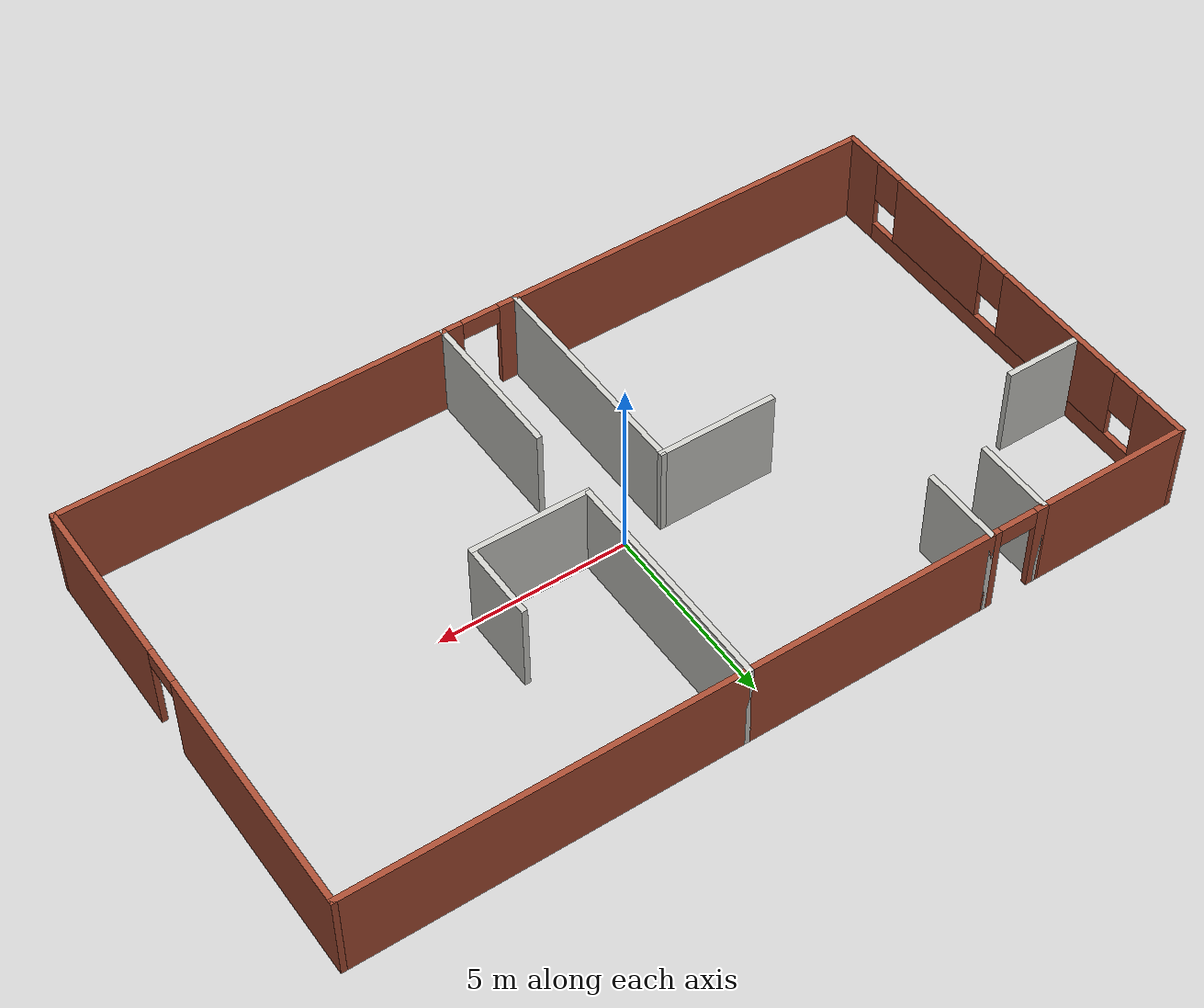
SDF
<?xml version='1.0'?>
<sdf version='1.6'>
  <model name='model'>
    <pose frame=''>0 0 0 0 -0 0</pose>
    <link name='Wall_10'>
      <collision name='Wall_10_Collision'>
        <geometry>
          <box>
            <size>2.15 0.15 2.5</size>
          </box>
        </geometry>
        <pose frame=''>0 0 1.25 0 -0 0</pose>
      </collision>
      <visual name='Wall_10_Visual'>
        <pose frame=''>0 0 1.25 0 -0 0</pose>
        <geometry>
          <box>
            <size>2.15 0.15 2.5</size>
          </box>
        </geometry>
        <material>
          <script>
            <uri>file://media/materials/scripts/gazebo.material</uri>
            <name>Gazebo/CeilingTiled</name>
          </script>
          <ambient>0.996078 0.47451 0.0196078 1</ambient>
        </material>
        <meta>
          <layer>0</layer>
        </meta>
      </visual>
      <pose frame=''>-7 5 0 0 0 -1.5708</pose>
    </link>
    <link name='Wall_12'>
      <collision name='Wall_12_Collision'>
        <geometry>
          <box>
            <size>2.15 0.15 2.5</size>
          </box>
        </geometry>
        <pose frame=''>0 0 1.25 0 -0 0</pose>
      </collision>
      <visual name='Wall_12_Visual'>
        <pose frame=''>0 0 1.25 0 -0 0</pose>
        <geometry>
          <box>
            <size>2.15 0.15 2.5</size>
          </box>
        </geometry>
        <material>
          <script>
            <uri>file://media/materials/scripts/gazebo.material</uri>
            <name>Gazebo/CeilingTiled</name>
          </script>
          <ambient>0.996078 0.47451 0.0196078 1</ambient>
        </material>
        <meta>
          <layer>0</layer>
        </meta>
      </visual>
      <pose frame=''>-10 2.5 0 0 -0 0</pose>
    </link>
    <link name='Wall_14'>
      <collision name='Wall_14_Collision'>
        <geometry>
          <box>
            <size>4.15 0.15 2.5</size>
          </box>
        </geometry>
        <pose frame=''>0 0 1.25 0 -0 0</pose>
      </collision>
      <visual name='Wall_14_Visual'>
        <pose frame=''>0 0 1.25 0 -0 0</pose>
        <geometry>
          <box>
            <size>4.15 0.15 2.5</size>
          </box>
        </geometry>
        <material>
          <script>
            <uri>file://media/materials/scripts/gazebo.material</uri>
            <name>Gazebo/Bricks</name>
          </script>
          <ambient>0.921569 0.807843 0.615686 1</ambient>
        </material>
        <meta>
          <layer>0</layer>
        </meta>
      </visual>
      <pose frame=''>-9 6 0 0 -0 0</pose>
    </link>
    <link name='Wall_16'>
      <collision name='Wall_16_Collision'>
        <geometry>
          <box>
            <size>16.65 0.15 2.5</size>
          </box>
        </geometry>
        <pose frame=''>0 0 1.25 0 -0 0</pose>
      </collision>
      <visual name='Wall_16_Visual'>
        <pose frame=''>0 0 1.25 0 -0 0</pose>
        <geometry>
          <box>
            <size>16.65 0.15 2.5</size>
          </box>
        </geometry>
        <material>
          <script>
            <uri>file://media/materials/scripts/gazebo.material</uri>
            <name>Gazebo/Bricks</name>
          </script>
          <ambient>0.921569 0.807843 0.615686 1</ambient>
        </material>
        <meta>
          <layer>0</layer>
        </meta>
      </visual>
      <pose frame=''>2.75 6 0 0 -0 0</pose>
    </link>
    <link name='Wall_18'>
      <collision name='Wall_18_Collision'>
        <geometry>
          <box>
            <size>2.15 0.15 2.5</size>
          </box>
        </geometry>
        <pose frame=''>0 0 1.25 0 -0 0</pose>
      </collision>
      <visual name='Wall_18_Visual'>
        <pose frame=''>0 0 1.25 0 -0 0</pose>
        <geometry>
          <box>
            <size>2.15 0.15 2.5</size>
          </box>
        </geometry>
        <material>
          <script>
            <uri>file://media/materials/scripts/gazebo.material</uri>
            <name>Gazebo/CeilingTiled</name>
          </script>
          <ambient>0.996078 0.47451 0.0196078 1</ambient>
        </material>
        <meta>
          <layer>0</layer>
        </meta>
      </visual>
      <pose frame=''>-5.5 5 0 0 0 -1.5708</pose>
    </link>
    <link name='Wall_20'>
      <pose frame=''>11 0 0 0 0 -1.5708</pose>
      <visual name='Wall_20_Visual_0'>
        <pose frame=''>-2.7875 0 1.25 0 -0 0</pose>
        <geometry>
          <box>
            <size>6.575 0.15 2.5</size>
          </box>
        </geometry>
        <material>
          <script>
            <uri>file://media/materials/scripts/gazebo.material</uri>
            <name>Gazebo/Bricks</name>
          </script>
          <ambient>0.921569 0.807843 0.615686 1</ambient>
        </material>
        <meta>
          <layer>0</layer>
        </meta>
      </visual>
      <collision name='Wall_20_Collision_0'>
        <geometry>
          <box>
            <size>6.575 0.15 2.5</size>
          </box>
        </geometry>
        <pose frame=''>-2.7875 0 1.25 0 -0 0</pose>
      </collision>
      <visual name='Wall_20_Visual_1'>
        <pose frame=''>3.7875 0 1.25 0 -0 0</pose>
        <geometry>
          <box>
            <size>4.575 0.15 2.5</size>
          </box>
        </geometry>
        <material>
          <script>
            <uri>file://media/materials/scripts/gazebo.material</uri>
            <name>Gazebo/Bricks</name>
          </script>
          <ambient>0.921569 0.807843 0.615686 1</ambient>
        </material>
        <meta>
          <layer>0</layer>
        </meta>
      </visual>
      <collision name='Wall_20_Collision_1'>
        <geometry>
          <box>
            <size>4.575 0.15 2.5</size>
          </box>
        </geometry>
        <pose frame=''>3.7875 0 1.25 0 -0 0</pose>
      </collision>
      <visual name='Wall_20_Visual_2'>
        <pose frame=''>1 0 2.25 0 -0 0</pose>
        <geometry>
          <box>
            <size>1 0.15 0.5</size>
          </box>
        </geometry>
        <material>
          <script>
            <uri>file://media/materials/scripts/gazebo.material</uri>
            <name>Gazebo/Bricks</name>
          </script>
          <ambient>0.921569 0.807843 0.615686 1</ambient>
        </material>
        <meta>
          <layer>0</layer>
        </meta>
      </visual>
      <collision name='Wall_20_Collision_2'>
        <geometry>
          <box>
            <size>1 0.15 0.5</size>
          </box>
        </geometry>
        <pose frame=''>1 0 2.25 0 -0 0</pose>
      </collision>
    </link>
    <link name='Wall_21'>
      <collision name='Wall_21_Collision'>
        <geometry>
          <box>
            <size>10.15 0.15 2.5</size>
          </box>
        </geometry>
        <pose frame=''>0 0 1.25 0 -0 0</pose>
      </collision>
      <visual name='Wall_21_Visual'>
        <pose frame=''>0 0 1.25 0 -0 0</pose>
        <geometry>
          <box>
            <size>10.15 0.15 2.5</size>
          </box>
        </geometry>
        <material>
          <script>
            <uri>file://media/materials/scripts/gazebo.material</uri>
            <name>Gazebo/Bricks</name>
          </script>
          <ambient>0.921569 0.807843 0.615686 1</ambient>
        </material>
        <meta>
          <layer>0</layer>
        </meta>
      </visual>
      <pose frame=''>6 -6 0 0 -0 3.14159</pose>
    </link>
    <link name='Wall_23'>
      <collision name='Wall_23_Collision'>
        <geometry>
          <box>
            <size>4.15 0.15 2.5</size>
          </box>
        </geometry>
        <pose frame=''>0 0 1.25 0 -0 0</pose>
      </collision>
      <visual name='Wall_23_Visual'>
        <pose frame=''>0 0 1.25 0 -0 0</pose>
        <geometry>
          <box>
            <size>4.15 0.15 2.5</size>
          </box>
        </geometry>
        <material>
          <script>
            <uri>file://media/materials/scripts/gazebo.material</uri>
            <name>Gazebo/CeilingTiled</name>
          </script>
          <ambient>0.996078 0.47451 0.0196078 1</ambient>
        </material>
        <meta>
          <layer>0</layer>
        </meta>
      </visual>
      <pose frame=''>1 -4 0 0 0 -1.5708</pose>
    </link>
    <link name='Wall_26'>
      <collision name='Wall_26_Collision'>
        <geometry>
          <box>
            <size>6.15 0.15 2.5</size>
          </box>
        </geometry>
        <pose frame=''>0 0 1.25 0 -0 0</pose>
      </collision>
      <visual name='Wall_26_Visual'>
        <pose frame=''>0 0 1.25 0 -0 0</pose>
        <geometry>
          <box>
            <size>6.15 0.15 2.5</size>
          </box>
        </geometry>
        <material>
          <script>
            <uri>file://media/materials/scripts/gazebo.material</uri>
            <name>Gazebo/CeilingTiled</name>
          </script>
          <ambient>0.996078 0.47451 0.0196078 1</ambient>
        </material>
        <meta>
          <layer>0</layer>
        </meta>
      </visual>
      <pose frame=''>1 3 0 0 -0 1.5708</pose>
    </link>
    <link name='Wall_28'>
      <collision name='Wall_28_Collision'>
        <geometry>
          <box>
            <size>3.15 0.15 2.5</size>
          </box>
        </geometry>
        <pose frame=''>0 0 1.25 0 -0 0</pose>
      </collision>
      <visual name='Wall_28_Visual'>
        <pose frame=''>0 0 1.25 0 -0 0</pose>
        <geometry>
          <box>
            <size>3.15 0.15 2.5</size>
          </box>
        </geometry>
        <material>
          <script>
            <uri>file://media/materials/scripts/gazebo.material</uri>
            <name>Gazebo/CeilingTiled</name>
          </script>
          <ambient>0.996078 0.47451 0.0196078 1</ambient>
        </material>
        <meta>
          <layer>0</layer>
        </meta>
      </visual>
      <pose frame=''>2.5 0 0 0 -0 0</pose>
    </link>
    <link name='Wall_29'>
      <collision name='Wall_29_Collision'>
        <geometry>
          <box>
            <size>2.15 0.15 2.5</size>
          </box>
        </geometry>
        <pose frame=''>0 0 1.25 0 -0 0</pose>
      </collision>
      <visual name='Wall_29_Visual'>
        <pose frame=''>0 0 1.25 0 -0 0</pose>
        <geometry>
          <box>
            <size>2.15 0.15 2.5</size>
          </box>
        </geometry>
        <material>
          <script>
            <uri>file://media/materials/scripts/gazebo.material</uri>
            <name>Gazebo/CeilingTiled</name>
          </script>
          <ambient>0.996078 0.47451 0.0196078 1</ambient>
        </material>
        <meta>
          <layer>0</layer>
        </meta>
      </visual>
      <pose frame=''>4 1 0 0 -0 1.5708</pose>
    </link>
    <link name='Wall_3'>
      <pose frame=''>-11 0 0 0 -0 1.5708</pose>
      <visual name='Wall_3_Visual_0'>
        <pose frame=''>-5.4875 0 1.25 0 -0 0</pose>
        <geometry>
          <box>
            <size>1.175 0.15 2.5</size>
          </box>
        </geometry>
        <material>
          <script>
            <uri>file://media/materials/scripts/gazebo.material</uri>
            <name>Gazebo/Bricks</name>
          </script>
          <ambient>0.921569 0.807843 0.615686 1</ambient>
        </material>
        <meta>
          <layer>0</layer>
        </meta>
      </visual>
      <collision name='Wall_3_Collision_0'>
        <geometry>
          <box>
            <size>1.175 0.15 2.5</size>
          </box>
        </geometry>
        <pose frame=''>-5.4875 0 1.25 0 -0 0</pose>
      </collision>
      <visual name='Wall_3_Visual_1'>
        <pose frame=''>0.5875 0 0.25 0 -0 0</pose>
        <geometry>
          <box>
            <size>10.975 0.15 0.5</size>
          </box>
        </geometry>
        <material>
          <script>
            <uri>file://media/materials/scripts/gazebo.material</uri>
            <name>Gazebo/Bricks</name>
          </script>
          <ambient>0.921569 0.807843 0.615686 1</ambient>
        </material>
        <meta>
          <layer>0</layer>
        </meta>
      </visual>
      <collision name='Wall_3_Collision_1'>
        <geometry>
          <box>
            <size>10.975 0.15 0.5</size>
          </box>
        </geometry>
        <pose frame=''>0.5875 0 0.25 0 -0 0</pose>
      </collision>
      <visual name='Wall_3_Visual_2'>
        <pose frame=''>-2.5 0 1.5 0 -0 0</pose>
        <geometry>
          <box>
            <size>3.2 0.15 2</size>
          </box>
        </geometry>
        <material>
          <script>
            <uri>file://media/materials/scripts/gazebo.material</uri>
            <name>Gazebo/Bricks</name>
          </script>
          <ambient>0.921569 0.807843 0.615686 1</ambient>
        </material>
        <meta>
          <layer>0</layer>
        </meta>
      </visual>
      <collision name='Wall_3_Collision_2'>
        <geometry>
          <box>
            <size>3.2 0.15 2</size>
          </box>
        </geometry>
        <pose frame=''>-2.5 0 1.5 0 -0 0</pose>
      </collision>
      <visual name='Wall_3_Visual_3'>
        <pose frame=''>1.875 0 1.5 0 -0 0</pose>
        <geometry>
          <box>
            <size>3.95 0.15 2</size>
          </box>
        </geometry>
        <material>
          <script>
            <uri>file://media/materials/scripts/gazebo.material</uri>
            <name>Gazebo/Bricks</name>
          </script>
          <ambient>0.921569 0.807843 0.615686 1</ambient>
        </material>
        <meta>
          <layer>0</layer>
        </meta>
      </visual>
      <collision name='Wall_3_Collision_3'>
        <geometry>
          <box>
            <size>3.95 0.15 2</size>
          </box>
        </geometry>
        <pose frame=''>1.875 0 1.5 0 -0 0</pose>
      </collision>
      <visual name='Wall_3_Visual_4'>
        <pose frame=''>5.3625 0 1.5 0 -0 0</pose>
        <geometry>
          <box>
            <size>1.425 0.15 2</size>
          </box>
        </geometry>
        <material>
          <script>
            <uri>file://media/materials/scripts/gazebo.material</uri>
            <name>Gazebo/Bricks</name>
          </script>
          <ambient>0.921569 0.807843 0.615686 1</ambient>
        </material>
        <meta>
          <layer>0</layer>
        </meta>
      </visual>
      <collision name='Wall_3_Collision_4'>
        <geometry>
          <box>
            <size>1.425 0.15 2</size>
          </box>
        </geometry>
        <pose frame=''>5.3625 0 1.5 0 -0 0</pose>
      </collision>
      <visual name='Wall_3_Visual_5'>
        <pose frame=''>-4.5 0 1.9 0 -0 0</pose>
        <geometry>
          <box>
            <size>0.8 0.15 1.2</size>
          </box>
        </geometry>
        <material>
          <script>
            <uri>file://media/materials/scripts/gazebo.material</uri>
            <name>Gazebo/Bricks</name>
          </script>
          <ambient>0.921569 0.807843 0.615686 1</ambient>
        </material>
        <meta>
          <layer>0</layer>
        </meta>
      </visual>
      <collision name='Wall_3_Collision_5'>
        <geometry>
          <box>
            <size>0.8 0.15 1.2</size>
          </box>
        </geometry>
        <pose frame=''>-4.5 0 1.9 0 -0 0</pose>
      </collision>
      <visual name='Wall_3_Visual_6'>
        <pose frame=''>-0.5 0 1.9 0 -0 0</pose>
        <geometry>
          <box>
            <size>0.8 0.15 1.2</size>
          </box>
        </geometry>
        <material>
          <script>
            <uri>file://media/materials/scripts/gazebo.material</uri>
            <name>Gazebo/Bricks</name>
          </script>
          <ambient>0.921569 0.807843 0.615686 1</ambient>
        </material>
        <meta>
          <layer>0</layer>
        </meta>
      </visual>
      <collision name='Wall_3_Collision_6'>
        <geometry>
          <box>
            <size>0.8 0.15 1.2</size>
          </box>
        </geometry>
        <pose frame=''>-0.5 0 1.9 0 -0 0</pose>
      </collision>
      <visual name='Wall_3_Visual_7'>
        <pose frame=''>4.25 0 1.9 0 -0 0</pose>
        <geometry>
          <box>
            <size>0.8 0.15 1.2</size>
          </box>
        </geometry>
        <material>
          <script>
            <uri>file://media/materials/scripts/gazebo.material</uri>
            <name>Gazebo/Bricks</name>
          </script>
          <ambient>0.921569 0.807843 0.615686 1</ambient>
        </material>
        <meta>
          <layer>0</layer>
        </meta>
      </visual>
      <collision name='Wall_3_Collision_7'>
        <geometry>
          <box>
            <size>0.8 0.15 1.2</size>
          </box>
        </geometry>
        <pose frame=''>4.25 0 1.9 0 -0 0</pose>
      </collision>
    </link>
    <link name='Wall_31'>
      <collision name='Wall_31_Collision'>
        <geometry>
          <box>
            <size>3.15 0.15 2.5</size>
          </box>
        </geometry>
        <pose frame=''>0 0 1.25 0 -0 0</pose>
      </collision>
      <visual name='Wall_31_Visual'>
        <pose frame=''>0 0 1.25 0 -0 0</pose>
        <geometry>
          <box>
            <size>3.15 0.15 2.5</size>
          </box>
        </geometry>
        <material>
          <script>
            <uri>file://media/materials/scripts/gazebo.material</uri>
            <name>Gazebo/CeilingTiled</name>
          </script>
          <ambient>0.996078 0.47451 0.0196078 1</ambient>
        </material>
        <meta>
          <layer>0</layer>
        </meta>
      </visual>
      <pose frame=''>-2.5 0 0 0 -0 3.14159</pose>
    </link>
    <link name='Wall_33'>
      <pose frame=''>0 -6 0 0 -0 0</pose>
      <visual name='Wall_33_Visual_0'>
        <pose frame=''>-0.7875 0 1.25 0 -0 0</pose>
        <geometry>
          <box>
            <size>0.575 0.15 2.5</size>
          </box>
        </geometry>
        <material>
          <script>
            <uri>file://media/materials/scripts/gazebo.material</uri>
            <name>Gazebo/Bricks</name>
          </script>
          <ambient>0.921569 0.807843 0.615686 1</ambient>
        </material>
        <meta>
          <layer>0</layer>
        </meta>
      </visual>
      <collision name='Wall_33_Collision_0'>
        <geometry>
          <box>
            <size>0.575 0.15 2.5</size>
          </box>
        </geometry>
        <pose frame=''>-0.7875 0 1.25 0 -0 0</pose>
      </collision>
      <visual name='Wall_33_Visual_1'>
        <pose frame=''>0.7875 0 1.25 0 -0 0</pose>
        <geometry>
          <box>
            <size>0.575 0.15 2.5</size>
          </box>
        </geometry>
        <material>
          <script>
            <uri>file://media/materials/scripts/gazebo.material</uri>
            <name>Gazebo/Bricks</name>
          </script>
          <ambient>0.921569 0.807843 0.615686 1</ambient>
        </material>
        <meta>
          <layer>0</layer>
        </meta>
      </visual>
      <collision name='Wall_33_Collision_1'>
        <geometry>
          <box>
            <size>0.575 0.15 2.5</size>
          </box>
        </geometry>
        <pose frame=''>0.7875 0 1.25 0 -0 0</pose>
      </collision>
      <visual name='Wall_33_Visual_2'>
        <pose frame=''>0 0 2.25 0 -0 0</pose>
        <geometry>
          <box>
            <size>1 0.15 0.5</size>
          </box>
        </geometry>
        <material>
          <script>
            <uri>file://media/materials/scripts/gazebo.material</uri>
            <name>Gazebo/Bricks</name>
          </script>
          <ambient>0.921569 0.807843 0.615686 1</ambient>
        </material>
        <meta>
          <layer>0</layer>
        </meta>
      </visual>
      <collision name='Wall_33_Collision_2'>
        <geometry>
          <box>
            <size>1 0.15 0.5</size>
          </box>
        </geometry>
        <pose frame=''>0 0 2.25 0 -0 0</pose>
      </collision>
    </link>
    <link name='Wall_36'>
      <pose frame=''>-6.25 6 0 0 -0 0</pose>
      <visual name='Wall_36_Visual_0'>
        <pose frame=''>-0.6625 0 1.25 0 -0 0</pose>
        <geometry>
          <box>
            <size>0.325 0.15 2.5</size>
          </box>
        </geometry>
        <material>
          <script>
            <uri>file://media/materials/scripts/gazebo.material</uri>
            <name>Gazebo/Bricks</name>
          </script>
          <ambient>0.921569 0.807843 0.615686 1</ambient>
        </material>
        <meta>
          <layer>0</layer>
        </meta>
      </visual>
      <collision name='Wall_36_Collision_0'>
        <geometry>
          <box>
            <size>0.325 0.15 2.5</size>
          </box>
        </geometry>
        <pose frame=''>-0.6625 0 1.25 0 -0 0</pose>
      </collision>
      <visual name='Wall_36_Visual_1'>
        <pose frame=''>0.6625 0 1.25 0 -0 0</pose>
        <geometry>
          <box>
            <size>0.325 0.15 2.5</size>
          </box>
        </geometry>
        <material>
          <script>
            <uri>file://media/materials/scripts/gazebo.material</uri>
            <name>Gazebo/Bricks</name>
          </script>
          <ambient>0.921569 0.807843 0.615686 1</ambient>
        </material>
        <meta>
          <layer>0</layer>
        </meta>
      </visual>
      <collision name='Wall_36_Collision_1'>
        <geometry>
          <box>
            <size>0.325 0.15 2.5</size>
          </box>
        </geometry>
        <pose frame=''>0.6625 0 1.25 0 -0 0</pose>
      </collision>
      <visual name='Wall_36_Visual_2'>
        <pose frame=''>0 0 2.25 0 -0 0</pose>
        <geometry>
          <box>
            <size>1 0.15 0.5</size>
          </box>
        </geometry>
        <material>
          <script>
            <uri>file://media/materials/scripts/gazebo.material</uri>
            <name>Gazebo/Bricks</name>
          </script>
          <ambient>0.921569 0.807843 0.615686 1</ambient>
        </material>
        <meta>
          <layer>0</layer>
        </meta>
      </visual>
      <collision name='Wall_36_Collision_2'>
        <geometry>
          <box>
            <size>1 0.15 0.5</size>
          </box>
        </geometry>
        <pose frame=''>0 0 2.25 0 -0 0</pose>
      </collision>
    </link>
    <link name='Wall_5'>
      <collision name='Wall_5_Collision'>
        <geometry>
          <box>
            <size>10.15 0.15 2.5</size>
          </box>
        </geometry>
        <pose frame=''>0 0 1.25 0 -0 0</pose>
      </collision>
      <visual name='Wall_5_Visual'>
        <pose frame=''>0 0 1.25 0 -0 0</pose>
        <geometry>
          <box>
            <size>10.15 0.15 2.5</size>
          </box>
        </geometry>
        <material>
          <script>
            <uri>file://media/materials/scripts/gazebo.material</uri>
            <name>Gazebo/Bricks</name>
          </script>
          <ambient>0.921569 0.807843 0.615686 1</ambient>
        </material>
        <meta>
          <layer>0</layer>
        </meta>
      </visual>
      <pose frame=''>-6 -6 0 0 -0 0</pose>
    </link>
    <link name='Wall_6'>
      <collision name='Wall_6_Collision'>
        <geometry>
          <box>
            <size>6.15 0.15 2.5</size>
          </box>
        </geometry>
        <pose frame=''>0 0 1.25 0 -0 0</pose>
      </collision>
      <visual name='Wall_6_Visual'>
        <pose frame=''>0 0 1.25 0 -0 0</pose>
        <geometry>
          <box>
            <size>6.15 0.15 2.5</size>
          </box>
        </geometry>
        <material>
          <script>
            <uri>file://media/materials/scripts/gazebo.material</uri>
            <name>Gazebo/CeilingTiled</name>
          </script>
          <ambient>0.996078 0.47451 0.0196078 1</ambient>
        </material>
        <meta>
          <layer>0</layer>
        </meta>
      </visual>
      <pose frame=''>-1 -3 0 0 -0 1.5708</pose>
    </link>
    <static>1</static>
  </model>
</sdf>
